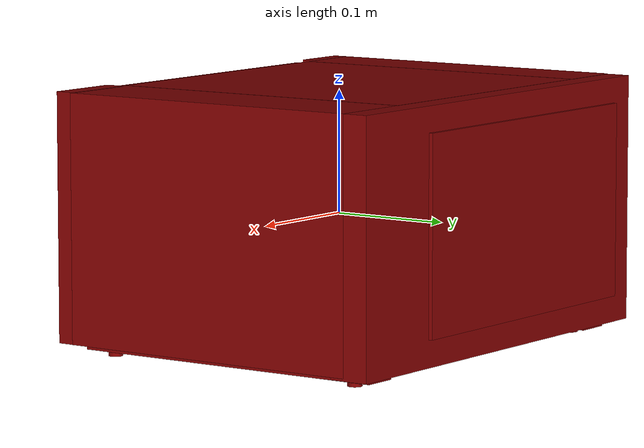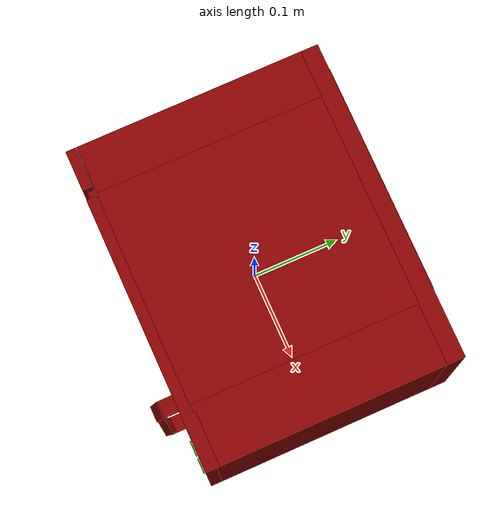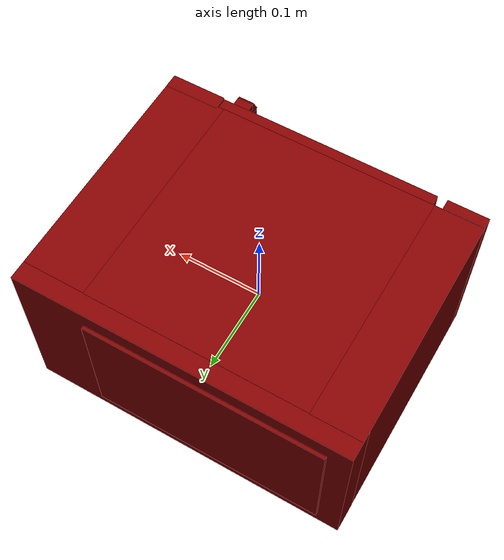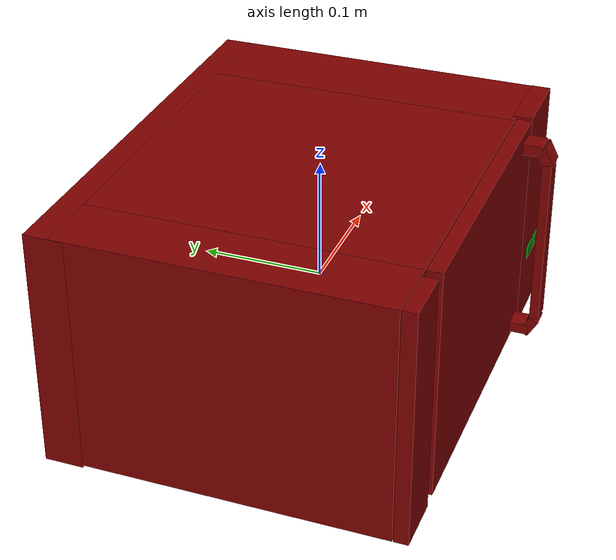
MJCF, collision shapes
<mujoco model="model">
  <compiler angle="radian"/>
  <asset>
    <mesh file="visuals/door.obj" name="door_vis"/>
    <mesh file="visuals/door_Clear.obj" name="door_Clear_vis"/>
    <mesh file="visuals/Body001.obj" name="Body001_vis"/>
    <mesh file="visuals/Disc001.obj" name="Disc001_vis"/>
    <texture file="visuals/T_BC001.png" name="Body001_material" type="2d"/>
    <material name="Body001_material" rgba="1 1 1 1.0" texture="Body001_material" shininess="0.4472135901451111" specular="0.3103448502657381"/>
    <texture file="visuals/T_BC001.png" name="door_material" type="2d"/>
    <material name="door_material" rgba="1 1 1 1.0" texture="door_material" shininess="0.4472135901451111" specular="0.3103448502657381"/>
    <texture file="visuals/T_BC001.png" name="door_Clear_material" type="2d"/>
    <material name="door_Clear_material" rgba="1 1 1 0.8126302361488342" texture="door_Clear_material" shininess="0.4472135901451111" specular="0.3103448502657381"/>
    <texture file="visuals/T_BC001.png" name="Disc001_material" type="2d"/>
    <material name="Disc001_material" rgba="1 1 1 1.0" texture="Disc001_material" shininess="0.4472135901451111" specular="0.3103448502657381"/>
  </asset>
  <default>
    <default class="visual">
      <geom conaffinity="0" contype="0" group="1" type="mesh"/>
    </default>
    <default class="collision">
      <geom group="0" rgba="0.5 0 0 0.5"/>
    </default>
    <default class="spawn">
      <geom group="0" rgba="1 1 1 0.5" contype="0" conaffinity="0"/>
      <site group="0" rgba="1 1 1 0.5"/>
    </default>
    <default class="region">
      <geom group="1" conaffinity="0" contype="0" rgba="0 1 0 0"/>
    </default>
  </default>
  <worldbody>
    <body>
      <body name="object">
        <geom class="collision" type="box" pos="-0.003231998533010483 -0.008412517607212067 -0.06219571456313133" size="0.09754028171300888 0.09754028171300888 0.0019993516616523266" quat="1.0 0.0 0.0 0.0" name="tray" rgba="0 1 0 0.5"/>
        <geom class="collision" type="box" pos="0.14662045240402222 -0.14070332050323486 -0.028801318258047104" size="0.008863324299454689 0.0005088911857455969 0.0058044916950166225" quat="1.0 0.0 0.0 0.0" name="stop_button" rgba="0.0 0.5 0 0.5"/>
        <geom class="collision" type="box" pos="0.16812685132026672 -0.14070332050323486 -0.028801318258047104" size="0.008716579526662827 0.0005088914185762405 0.00580449216067791" quat="1.0 0.0 0.0 0.0" name="start_button" rgba="0.0 0.5 0 0.5"/>
        <geom mesh="Body001_vis" type="mesh" solimp="0.998 0.998 0.001" solref="0.001 1" density="100" friction="0.95 0.3 0.1" class="visual" material="Body001_material"/>
        <geom class="collision" type="box" pos="2.9017101041972637e-05 0.1426287591457367 0.004657639190554619" size="0.18795225024223328 0.016206447035074234 0.10137901455163956" quat="1.0 0.0 0.0 0.0"/>
        <geom class="collision" type="box" pos="-0.16017474234104156 0.006383231841027737 0.005948532372713089" size="0.027747679501771927 0.13234779238700867 0.10032780468463898" quat="1.0 0.0 0.0 0.0"/>
        <geom class="collision" type="box" pos="0.1477949619293213 0.005930941551923752 0.005617140792310238" size="0.040239255875349045 0.13179776072502136 0.10045328736305237" quat="1.0 0.0 0.0 0.0"/>
        <geom class="collision" type="box" pos="-0.03390125930309296 0.005991270765662193 0.0958830863237381" size="0.15090252459049225 0.13220150768756866 0.010300111025571823" quat="1.0 0.0 0.0 0.0"/>
        <geom class="collision" type="box" pos="-0.034125491976737976 0.00042360369116067886 -0.08433466404676437" size="0.15090252459049225 0.1264907717704773 0.010389885865151882" quat="1.0 0.0 0.0 0.0"/>
        <geom class="collision" type="box" pos="0.1563824713230133 -0.13107986748218536 0.005812410730868578" size="0.03164249658584595 0.008125195279717445 0.10056848078966141" quat="1.0 0.0 0.0 0.0"/>
        <geom class="collision" type="box" pos="-0.028570229187607765 0.161198228597641 0.005614798050373793" size="0.13424161076545715 0.001709279720671475 0.07982275635004044" quat="1.0 0.0 0.0 0.0"/>
        <geom class="collision" type="cylinder" pos="-0.15449123084545135 -0.10835962742567062 -0.10302229970693588" size="0.005849474109709263 0.003367456141859293" quat="1.0 0.0 0.0 0.0"/>
        <geom class="collision" type="cylinder" pos="0.1549525409936905 -0.10835962742567062 -0.10302229970693588" size="0.005849474109709263 0.003367452649399638" quat="1.0 0.0 0.0 0.0"/>
        <geom class="collision" type="cylinder" pos="-0.15449123084545135 0.12534794211387634 -0.10302229970693588" size="0.005849474109709263 0.003367456141859293" quat="1.0 0.0 0.0 0.0"/>
        <geom class="collision" type="cylinder" pos="0.1549525409936905 0.12534794211387634 -0.10302229970693588" size="0.005849474109709263 0.003367448691278696" quat="1.0 0.0 0.0 0.0"/>
        <geom class="collision" type="box" pos="0.15448647737503052 0.010906070470809937 -0.09689715504646301" size="0.014465576969087124 0.1375555694103241 0.0042976136319339275" quat="1.0 0.0 0.0 0.0"/>
        <geom class="collision" type="box" pos="-0.15199589729309082 0.010906070470809937 -0.09689715504646301" size="0.014465576969087124 0.1375555694103241 0.0042976136319339275" quat="1.0 0.0 0.0 0.0"/>
        <geom class="collision" type="box" pos="-0.16453441977500916 -0.13268838822841644 0.005948532372713089" size="0.023368624970316887 0.005975823849439621 0.10032780468463898" quat="1.0 0.0 0.0 0.0"/>
        <body name="door">
          <joint axis="0.0 0.0 1.0" pos="-0.13537684082984924 -0.13234806060791016 0.009561501443386078" limited="true" name="microjoint" range="-1.5707963267948966 0.0" type="hinge" damping="1" frictionloss="1" armature=".01" stiffness="0.05"/>
          <geom mesh="door_vis" type="mesh" solimp="0.998 0.998 0.001" solref="0.001 1" density="100" friction="0.95 0.3 0.1" class="visual" material="door_material"/>
          <geom class="collision" type="box" pos="-0.0030249846167862415 -0.13267779350280762 0.006471322849392891" size="0.12721829116344452 0.006274091079831123 0.09806021302938461" quat="1.0 0.0 0.0 0.0"/>
          <geom class="collision" type="box" pos="0.10733417421579361 -0.15953455865383148 0.005816248245537281" size="0.009414001367986202 0.0038938671350479126 0.07403118163347244" quat="1.0 0.0 0.0 0.0" name="door_handle"/>
          <geom class="collision" type="box" pos="0.10736804455518723 -0.15704017877578735 0.0858364999294281" size="0.009130947291851044 0.0043584443628787994 0.008434435352683067" quat="0.972201943397522 -0.2341439425945282 0.0 0.0"/>
          <geom class="collision" type="box" pos="0.10736804455518723 -0.14662763476371765 0.09116309881210327" size="0.009130947291851044 0.008529133163392544 0.004544646013528109" quat="1.0 0.0 0.0 0.0"/>
          <geom class="collision" type="box" pos="0.10736804455518723 -0.15553340315818787 -0.07727404683828354" size="0.009130947291851044 0.0043584443628787994 0.008434435352683067" quat="0.2628830671310425 -0.9648277163505554 0.0 0.0"/>
          <geom class="collision" type="box" pos="0.10736804455518723 -0.14662763476371765 -0.08070426434278488" size="0.009130947291851044 0.008529133163392544 0.004544646479189396" quat="1.0 0.0 0.0 0.0"/>
          <body name="door_Clear">
            <geom mesh="door_Clear_vis" type="mesh" solimp="0.998 0.998 0.001" solref="0.001 1" density="100" friction="0.95 0.3 0.1" class="visual" material="door_Clear_material"/>
            <geom class="collision" type="box" pos="-0.00834566354751587 -0.13122253119945526 0.0062783509492874146" size="0.13271388411521912 0.003317381953820586 0.08452608436346054" quat="1.0 0.0 0.0 0.0"/>
          </body>
        </body>
        <body name="Disc001">
          <joint axis="0.0 0.0 1.0" pos="-0.004179953131824732 -0.008986365050077438 -0.069935142993927" limited="false" name="Disc001_joint" range="0 360" type="hinge" damping="1" frictionloss="1" armature=".01" stiffness="0.05"/>
          <geom mesh="Disc001_vis" type="mesh" solimp="0.998 0.998 0.001" solref="0.001 1" density="100" friction="0.95 0.3 0.1" class="visual" material="Disc001_material"/>
          <geom class="collision" type="cylinder" pos="-0.003899635747075081 -0.01004534587264061 -0.06871001422405243" size="0.1008535623550415 0.0024767254944890738" quat="1.0 0.0 0.0 0.0"/>
        </body>
        <geom class="region" name="reg_main" type="box" pos="-3.725290298461914e-09 0.011896438896656036 0.0" size="0.1881159096956253 0.1511014997959137 0.10638976097106934"/>
        <geom class="region" name="reg_int" type="box" pos="-0.0131162628531456 0.0017914548516273499 0.005777951329946518" size="0.1204545721411705 0.12527542561292648 0.07947513088583946"/>
      </body>
    </body>
  </worldbody>
  <actuator>
    <motor name="microjoint_actuator" joint="microjoint" gear="10"/>
    <motor name="Disc001_joint_actuator" joint="Disc001_joint" gear="10"/>
  </actuator>
</mujoco>
